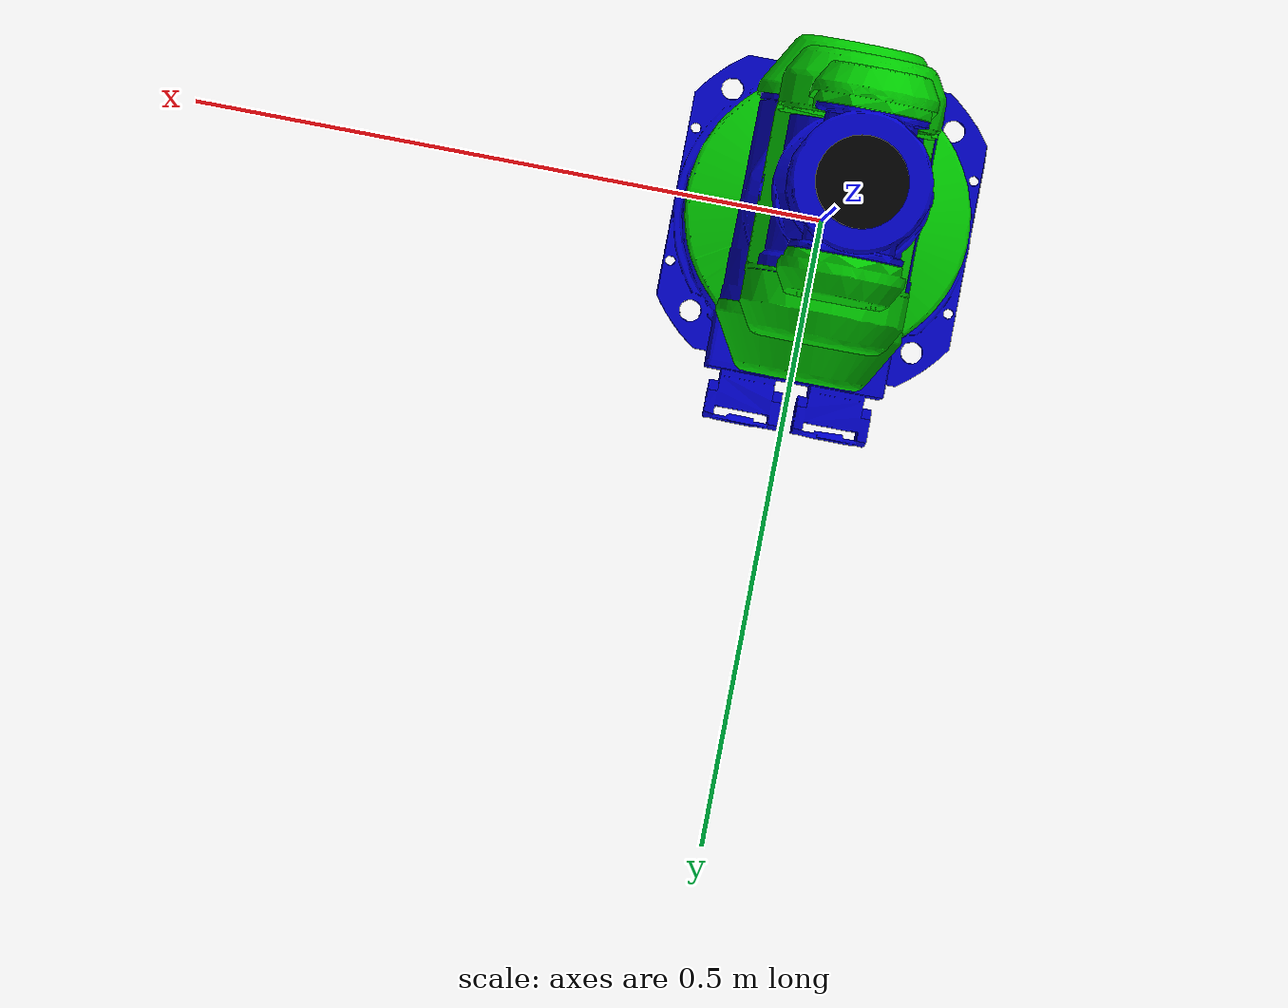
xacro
<?xml version="1.0"?>

<robot xmlns:sensor="http://playerstage.sourceforge.net/gazebo/xmlschema/#sensor"
       xmlns:controller="http://playerstage.sourceforge.net/gazebo/xmlschema/#controller"
       xmlns:interface="http://playerstage.sourceforge.net/gazebo/xmlschema/#interface"
       xmlns:xacro="http://ros.org/wiki/xacro"
       name="pa10" >

  <!-- generic simulator_gazebo plugins for starting mechanism control, ros time, ros battery -->
  <xacro:include filename="$(find aurobot_description)/gazebo/gazebo.urdf.xacro"/>
  <!-- materials for visualization -->
  <xacro:include filename="$(find aurobot_description)/urdf/materials.urdf.xacro"/>
  <!-- The following included files set up definitions of parts of the robot body misc common stuff? -->
  <xacro:include filename="$(find aurobot_description)/urdf/common.xacro"/>
  <!-- PA10 Arm -->
  <xacro:include filename="$(find aurobot_description)/urdf/shoulder/shoulder.urdf.xacro"/>
  <xacro:include filename="$(find aurobot_description)/urdf/upper_arm/upper_arm.urdf.xacro"/>
  <xacro:include filename="$(find aurobot_description)/urdf/forearm/forearm.urdf.xacro"/>

  <!-- Joint the robot to the world -->
  <link name="world"/>
  <joint name="world_joint" type="fixed">
    <parent link="world"/>
    <child link="r_shoulder_roll_link"/>
    <origin xyz="0 0 0" rpy="0 0 0"/>
  </joint>

  <!-- Now we can start using the macros included above to define the actual PA10 -->
  <xacro:pa10_shoulder side="r" child="r_elbow_flex_link"/>
  <xacro:pa10_upper_arm side="r" child="r_wrist_flex_link"/>
  <xacro:pa10_forearm side="r" child="r_jr3_link"/>

  <!-- JR3 -->
  <link name="r_jr3_link">
    <inertial>
      <origin xyz="0 0.0 0" rpy="0 0 0"/>
      <mass value="0.40"/>
      <inertia ixx="0.012500"  ixy="0.000005"  ixz="0.000005" iyy="0.011431" iyz="0.000005" izz="0.012500"/>
    </inertial>
    <visual>
      <geometry>
        <mesh filename="package://aurobot_description/meshes/forearm/jr3.stl"/>
      </geometry>
      <material name="black"/>
    </visual>
    <collision>
      <geometry>
        <mesh filename="package://aurobot_description/meshes/forearm/jr3.stl"/>
      </geometry>
    </collision>
  </link>

</robot>

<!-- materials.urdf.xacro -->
<robot>
  <material name="black">
    <color rgba="0.0 0.0 0.0 1.0"/>
  </material>

  <material name="blue">
    <color rgba="0.0 0.0 0.8 1.0"/>
  </material>

  <material name="green">
    <color rgba="0.0 0.8 0.0 1.0"/>
  </material>

  <material name="grey">
    <color rgba="0.2 0.2 0.2 1.0"/>
  </material>

  <material name="orange">
    <color rgba="${255/255} ${108/255} ${10/255} 1.0"/>
  </material>

  <material name="brown">
    <color rgba="${222/255} ${207/255} ${195/255} 1.0"/>
  </material>

  <material name="red">
    <color rgba="0.8 0.0 0.0 1.0"/>
  </material>

  <material name="white">
    <color rgba="1.0 1.0 1.0 1.0"/>
  </material>
</robot>

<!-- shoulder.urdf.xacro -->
<!-- XML namespaces -->
<robot xmlns:sensor="http://playerstage.sourceforge.net/gazebo/xmlschema/#sensor"
       xmlns:controller="http://playerstage.sourceforge.net/gazebo/xmlschema/#controller"
       xmlns:interface="http://playerstage.sourceforge.net/gazebo/xmlschema/#interface"
       xmlns:xacro="http://ros.org/wiki/xacro">

  <!-- Things that are needed only for Gazebo (not the physical robot).  These include
       sensor and controller plugin specifications -->
  <xacro:include filename="$(find aurobot_description)/urdf/shoulder/shoulder.gazebo.xacro"/>
  <xacro:include filename="$(find aurobot_description)/urdf/shoulder/shoulder.transmission.xacro"/>
  <xacro:include filename="$(find aurobot_description)/urdf/common.xacro"/>

 <!-- ============================   Shoulder   ============================ -->

  <xacro:macro name="pa10_shoulder" params="side child">
    <!-- S1: Shoulder roll -->
    <link name="${side}_shoulder_roll_link">
      <inertial>
        <mass value="12.43"/>
        <origin xyz="0 0 0" rpy="0 0 0"/>
        <inertia ixx="1.00"  ixy="0"  ixz="0" iyy="1.00" iyz="0" izz="1.00"/>
      </inertial>
      <visual>
        <geometry>
          <mesh filename="package://aurobot_description/meshes/shoulder/S1.dae"/>
        </geometry>
        <material name="blue"/>
      </visual>
      <collision>
        <geometry>
          <mesh filename="package://aurobot_description/meshes/shoulder/S1.stl"/>
        </geometry>
      </collision>
    </link>
    <joint name="${side}_shoulder_roll_joint" type="revolute">
      <parent link="${side}_shoulder_roll_link"/>
      <child link="${side}_shoulder_lift_link"/>
      <origin xyz="0 0 0.201" rpy="0 0 0"/>
      <axis xyz="0 0 1"/>
      <limit effort="1000.0" lower="-3.09" upper="3.09" velocity="0.1"/>
      <cfm>0.7</cfm>
      <damping>10.0</damping>
    </joint>

    <!-- S2: Shoulder lift -->
    <link name="${side}_shoulder_lift_link">
      <inertial>
        <mass value="9.78"/>
        <origin xyz="0 0 0.115" rpy="0 0 0"/>
        <inertia ixx="0.110697"  ixy="0.000005"  ixz="0.000345" iyy="0.084268" iyz="0.000518" izz="0.054080"/>
      </inertial>
      <visual>
        <origin xyz="0 0 0.115" rpy="0 0 0"/>
        <geometry>
          <mesh filename="package://aurobot_description/meshes/shoulder/S2.dae"/>
        </geometry>
        <material name="green"/>
      </visual>
      <collision>
        <origin xyz="0 0 0.115" rpy="0 0 0"/>
        <geometry>
          <mesh filename="package://aurobot_description/meshes/shoulder/S2.stl" />
        </geometry>
      </collision>
    </link>
    <joint name="${side}_shoulder_lift_joint" type="revolute">
      <parent link="${side}_shoulder_lift_link"/>
      <child link="${side}_upper_arm_roll_link"/>
      <origin xyz="0 0 0.115" rpy="0 0 0"/>
      <axis xyz="0 1 0"/>
      <limit effort="1000.0" lower="-1.59" upper="1.59" velocity="0.1"/>
      <cfm>0.7</cfm>
      <damping>10.0</damping>
    </joint>

    <!-- S3: Upperarm roll -->
    <link name="${side}_upper_arm_roll_link">
      <inertial>
        <mass value="8.41"/>
        <origin xyz="0 -0.0632 0" rpy="0 0 0"/>
        <inertia ixx="0.177079"  ixy="0.000257"  ixz="0.000005" iyy="0.018440" iyz="0.000005" izz="0.173903"/>
      </inertial>
      <visual>
        <geometry>
          <mesh filename="package://aurobot_description/meshes/shoulder/S3.dae" />
        </geometry>
        <material name="blue"/>
      </visual>
      <collision>
        <geometry>
          <mesh filename="package://aurobot_description/meshes/shoulder/S3.stl" />
        </geometry>
      </collision>
    </link>
    <joint name="${side}_upper_arm_roll_joint" type="revolute">
      <parent link="${side}_upper_arm_roll_link"/>
      <child link="${child}"/>
      <axis xyz="0 0 1"/>
      <origin xyz="0 0 0.325" rpy="0 0 0"/>
      <limit effort="1000.0" lower="-3.04" upper="3.04" velocity="0.2"/>
      <cfm>0.7</cfm>
      <damping>10.0</damping>
    </joint>

    <!-- extensions -->
    <xacro:pa10_shoulder_gazebo side="${side}"/>
    <xacro:pa10_shoulder_transmission side="${side}"/>
  </xacro:macro>
</robot>

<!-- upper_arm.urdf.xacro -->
<!-- XML namespaces -->
<robot xmlns:sensor="http://playerstage.sourceforge.net/gazebo/xmlschema/#sensor"
       xmlns:controller="http://playerstage.sourceforge.net/gazebo/xmlschema/#controller"
       xmlns:interface="http://playerstage.sourceforge.net/gazebo/xmlschema/#interface"
       xmlns:xacro="http://ros.org/wiki/xacro">

  <!-- Things that are needed only for Gazebo (not the physical robot). These include
       sensor and controller plugin specifications -->
  <xacro:include filename="$(find aurobot_description)/urdf/upper_arm/upper_arm.gazebo.xacro"/>
  <xacro:include filename="$(find aurobot_description)/urdf/upper_arm/upper_arm.transmission.xacro"/>
  <xacro:include filename="$(find aurobot_description)/urdf/common.xacro"/>

  <!-- ============================   Upper Arm   ============================ -->

  <xacro:macro name="pa10_upper_arm" params="side child">
    <!-- E1: Elbow flex -->
    <link name="${side}_elbow_flex_link">
      <inertial>
        <origin xyz="0 0 0.47" rpy="0 0 0"/>
        <mass value="3.51"/>
        <inertia ixx="0.032979"  ixy="0.000005"  ixz="0.000002" iyy="0.017031" iyz="0.000027" izz="0.022417"/>
      </inertial>
      <visual>
        <origin xyz="0 0 0.125" rpy="0 0 0"/>
        <geometry>
          <mesh filename="package://aurobot_description/meshes/upper_arm/E1.dae"/>
        </geometry>
        <material name="green"/>
      </visual>
      <collision>
        <origin xyz="0 0 0.125" rpy="0 0 0"/>
        <geometry>
          <mesh filename="package://aurobot_description/meshes/upper_arm/E1.stl"/>
        </geometry>
      </collision>
    </link>
    <joint name="${side}_elbow_flex_joint" type="revolute">
      <parent link="${side}_elbow_flex_link"/>
      <child link="${side}_forearm_roll_link"/>
      <origin xyz="0 0 0.125" rpy="0 0 0"/>
      <axis xyz="0 1 0"/>
      <limit effort="1000.0" lower="-2.39" upper="2.39" velocity="0.2"/>
      <cfm>0.7</cfm>
      <damping>10.0</damping>
    </joint>

    <!-- E2: Forearm_roll -->
    <link name="${side}_forearm_roll_link">
      <inertial>
        <origin xyz="0 -0.046 0" rpy="0 0 0"/>
        <mass value="4.31"/>
        <inertia ixx="0.051762"  ixy="-0.000577"  ixz="0.000005" iyy="0.006329" iyz="0.000005" izz="0.051407"/>
      </inertial>
      <visual>
        <geometry>
          <mesh filename="package://aurobot_description/meshes/upper_arm/E2.dae"/>
        </geometry>
        <material name="blue"/>
      </visual>
      <collision>
        <geometry>
          <mesh filename="package://aurobot_description/meshes/upper_arm/E2.stl"/>
        </geometry>
      </collision>
    </link>
    <joint name="${side}_forearm_roll_joint" type="revolute">
      <parent link="${side}_forearm_roll_link"/>
      <child link="${child}"/>
      <axis xyz="0 0 1"/>
      <origin xyz="0 0 0.450" rpy="0 0 0"/>
      <limit effort="1000.0" lower="-2.0" upper="2.0" velocity="0.628"/>
    </joint>

    <!-- extensions-->
    <xacro:pa10_upper_arm_gazebo side="${side}"/>
    <xacro:pa10_upper_arm_transmission side="${side}"/>
  </xacro:macro>
</robot>

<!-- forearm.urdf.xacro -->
<!-- XML namespaces -->
<robot xmlns:sensor="http://playerstage.sourceforge.net/gazebo/xmlschema/#sensor"
       xmlns:controller="http://playerstage.sourceforge.net/gazebo/xmlschema/#controller"
       xmlns:interface="http://playerstage.sourceforge.net/gazebo/xmlschema/#interface"
       xmlns:xacro="http://ros.org/wiki/xacro">

  <!-- Things that are needed only for Gazebo (not the physical robot). These include
       sensor and controller plugin specifications -->
  <xacro:include filename="$(find aurobot_description)/urdf/forearm/forearm.gazebo.xacro"/>
  <xacro:include filename="$(find aurobot_description)/urdf/forearm/forearm.transmission.xacro"/>
  <xacro:include filename="$(find aurobot_description)/urdf/common.xacro"/>

  <!-- ============================   Forearm   ============================ -->

  <xacro:macro name="pa10_forearm" params="side child" >
    <!-- W1: Wrist flex -->
    <link name="${side}_wrist_flex_link">
      <inertial>
        <origin xyz="0 -0.0432 0.03" rpy="0 0 0"/>
        <mass value="3.45"/>
        <inertia ixx="0.076687"  ixy="0.000005"  ixz="0.000960" iyy="0.077392" iyz="0.000005" izz="0.006233"/>
      </inertial>
      <visual>
        <origin xyz="0 0 0.03" rpy="0 0 0"/>
        <geometry>
          <mesh filename="package://aurobot_description/meshes/forearm/W1.dae"/>
        </geometry>
        <material name="green"/>
      </visual>
      <collision>
        <origin xyz="0 0 0.03" rpy="0 0 0"/>
        <geometry>
          <mesh filename="package://aurobot_description/meshes/forearm/W1.stl"/>
        </geometry>
      </collision>
    </link>
    <joint name="${side}_wrist_flex_joint" type="revolute">
      <parent link="${side}_wrist_flex_link"/>
      <child link="${side}_wrist_roll_link"/>
      <origin xyz="0 0 0.05" rpy="0 0 0"/>
      <axis xyz="0 1 0"/>
      <limit effort="1000.0" lower="-2.88" upper="2.88" velocity="0.628"/>
      <cfm>0.7</cfm>
    </joint>

    <!-- W2: Wrist roll -->
    <link name="${side}_wrist_roll_link">
      <inertial>
        <origin xyz="0 0.003 -0.0175" rpy="0 0 0"/>
        <mass value="1.46"/>
        <inertia ixx="0.012500"  ixy="0.000005"  ixz="0.000005" iyy="0.011431" iyz="0.000005" izz="0.012500"/>
      </inertial>
      <visual>
        <origin xyz="0 0.0 -0.0175" rpy="0 0 0"/>
        <geometry>
          <mesh filename="package://aurobot_description/meshes/forearm/W2.dae"/>
        </geometry>
        <material name="blue"/>
      </visual>
      <collision>
        <origin xyz="0 0.0 -0.0175" rpy="0 0 0"/>
        <geometry>
          <mesh filename="package://aurobot_description/meshes/forearm/W2.stl"/>
        </geometry>
      </collision>
    </link>
    <joint name="${side}_wrist_roll_joint" type="revolute">
      <parent link="${side}_wrist_roll_link"/>
      <child link="${child}"/>
      <origin xyz="0 0 0.050" rpy="0 0 0"/>
      <axis xyz="0 0 1"/>
      <limit effort="1000.0" lower="-2.0" upper="2.28" velocity="0.628"/>
      <cfm>0.7</cfm>
    </joint>

    <!-- extensions-->
    <xacro:pa10_forearm_gazebo side="${side}"/>
    <xacro:pa10_forearm_transmission side="${side}"/>
  </xacro:macro>
</robot>
